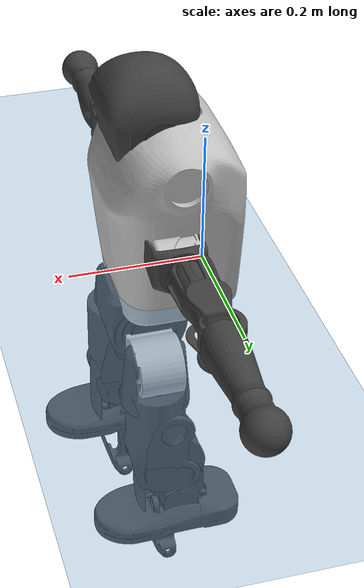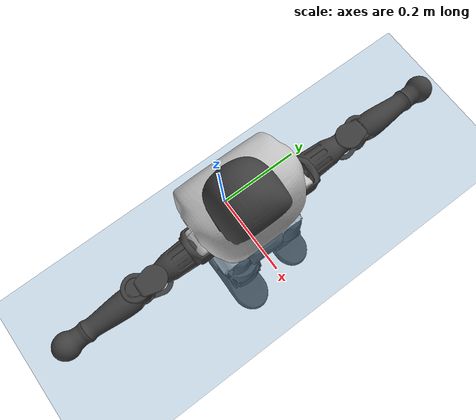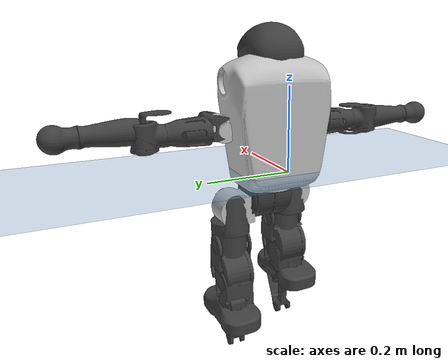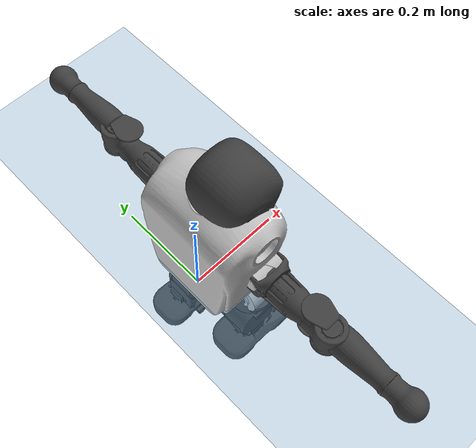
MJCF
<mujoco model="T1">
  <compiler angle="radian" assetdir="assets" balanceinertia="true" inertiafromgeom="false"/>

  <option timestep="0.005" density="1.2" viscosity="2e-05"/>

  <size nkey="1"/>

  <visual>
    <quality shadowsize="8192"/>
    <map shadowclip="0.5"/>
  </visual>

  <default>
    <default class="/">
      <joint armature="0.01" damping="0.01" frictionloss="0.1"/>
      <geom contype="0" conaffinity="0" group="1" solref="-1000 -80"/>
      <site size="0.01 0.005 0.005" group="5"/>
      <general forcelimited="true" biastype="affine" gainprm="25" biasprm="0 -25 -0.6"/>
      <default class="t1">
        <geom rgba="0.25 0.25 0.25 1"/>
        <default class="visual">
          <geom type="mesh" group="2"/>
        </default>
        <default class="collision">
          <geom group="3"/>
        </default>
        <default class="foot">
          <geom size="0.1115 0.05 0.015" type="box" condim="6" group="4" priority="1" solimp="0.015 1 0.015"/>
        </default>
        <default class="reward_collision_sphere">
          <geom group="5" rgba="1 0 0 1"/>
        </default>
      </default>
    </default>
  </default>

  <asset>
    <texture type="skybox" colorspace="auto" name="//unnamed_texture_0" builtin="gradient" rgb1="0.95 0.95 0.95" rgb2="0.95 0.95 0.95" width="100" height="600"/>
    <texture type="2d" colorspace="auto" name="texplane" builtin="checker" rgb1="0.345 0.575 0.748" rgb2="0.345 0.575 0.748" markrgb="1 1 1" width="512" height="512"/>
    <material name="MatPlane" class="/" texture="texplane" texuniform="true" texrepeat="2 2" specular="0.9"/>
    <mesh name="Trunk" class="/" file="Trunk.stl"/>
    <mesh name="H1" class="/" file="H1.stl"/>
    <mesh name="H2" class="/" file="H2.stl"/>
    <mesh name="AL1" class="/" file="AL1.stl"/>
    <mesh name="AL2" class="/" file="AL2.stl"/>
    <mesh name="AL3" class="/" file="AL3.stl"/>
    <mesh name="left_hand_link" class="/" file="left_hand_link.stl"/>
    <mesh name="AR1" class="/" file="AR1.stl"/>
    <mesh name="AR2" class="/" file="AR2.stl"/>
    <mesh name="AR3" class="/" file="AR3.stl"/>
    <mesh name="right_hand_link" class="/" file="right_hand_link.stl"/>
    <mesh name="Waist" class="/" file="Waist.stl"/>
    <mesh name="Hip_Pitch_Left" class="/" file="Hip_Pitch_Left.stl"/>
    <mesh name="Hip_Roll_Left" class="/" file="Hip_Roll_Left.stl"/>
    <mesh name="Hip_Yaw_Left" class="/" file="Hip_Yaw_Left.stl"/>
    <mesh name="Shank_Left" class="/" file="Shank_Left.stl"/>
    <mesh name="Ankle_Cross_Left" class="/" file="Ankle_Cross_Left.stl"/>
    <mesh name="left_foot_link" class="/" file="left_foot_link.stl"/>
    <mesh name="Hip_Pitch_Right" class="/" file="Hip_Pitch_Right.stl"/>
    <mesh name="Hip_Roll_Right" class="/" file="Hip_Roll_Right.stl"/>
    <mesh name="Hip_Yaw_Right" class="/" file="Hip_Yaw_Right.stl"/>
    <mesh name="Shank_Right" class="/" file="Shank_Right.stl"/>
    <mesh name="Ankle_Cross_Right" class="/" file="Ankle_Cross_Right.stl"/>
    <mesh name="right_foot_link" class="/" file="right_foot_link.stl"/>
  </asset>

  <worldbody>
    <geom name="floor" class="/" size="100 100 0.125" type="plane" group="0" material="MatPlane"/>
    <light name="toplight_shadow" class="/" pos="0 0 5" dir="0.0990148 0.0990148 -0.990148" type="directional" ambient="0.04 0.04 0.04" diffuse="0.55 0.55 0.55" specular="0.12 0.12 0.12"/>
    <light name="toplight_fill" class="/" pos="0 0 5" dir="0.0990148 0.0990148 -0.990148" type="directional" castshadow="false" ambient="0.04 0.04 0.04" diffuse="0.3 0.3 0.3" specular="0.08 0.08 0.08"/>
    <body name="trunk" childclass="t1" pos="0.00476548 0.0106791 -0.008981" quat="0.999985 -0.00344896 0.0042017 -0.0011537">
      <inertial pos="0.0665365 -0.00390902 0.0486758" quat="0.99992 -0.00580157 -0.0105791 0.00391621" mass="6.49057" diaginertia="0.217425 0.0153959 0.00130422"/>
      <joint name="//unnamed_joint_0" type="free" armature="0" damping="0" frictionloss="0"/>
      <geom name="//unnamed_geom_1" class="visual" rgba="0.76 0.76 0.76 1" mesh="Trunk"/>
      <geom name="//unnamed_geom_2" class="collision" size="0.0622364 0.0829819 0.124473" pos="0.0748694 0 0.0606598" type="box"/>
      <geom name="//unnamed_geom_3" class="reward_collision_sphere" size="0.0954292" pos="0.0748694 0 0.0505499"/>
      <geom name="//unnamed_geom_4" class="reward_collision_sphere" size="0.0124473" pos="0.0748694 0.0625714 0"/>
      <geom name="//unnamed_geom_5" class="reward_collision_sphere" size="0.0124473" pos="0.0748694 -0.0625714 0"/>
      <geom name="//unnamed_geom_6" class="reward_collision_sphere" size="0.0124473" pos="0.0748694 0.0787664 0.0909897"/>
      <geom name="//unnamed_geom_7" class="reward_collision_sphere" size="0.0124473" pos="0.0748694 -0.0787664 0.0909897"/>
      <site name="imu" pos="-0.0449127 0.0160656 -0.0148617" size="0.00829819"/>
      <camera name="track" pos="0 -1.47227 0" quat="0.707107 0.707107 0 0" mode="trackcom"/>
      <camera name="ego_camera" pos="0.152234 0 0.212309" quat="-0.5 -0.5 0.5 0.5"/>
      <body name="H1" pos="0.0668621 -0.0112582 0.131662" quat="1 -7.17158e-06 9.58763e-05 0.000142607">
        <inertial pos="0.00894358 -0.00615034 0.0199405" quat="0.768202 0.0103003 0.0658625 0.636728" mass="0.280383" diaginertia="0.000782827 4.70396e-05 5.42685e-06"/>
        <joint name="AAHead_yaw" pos="0 0 0" axis="0.0100458 0.00185211 0.999948" stiffness="0.000423671" range="-1.46486 1.76213" armature="0.0126959" damping="0.0112589" frictionloss="0.0257027"/>
        <geom name="//unnamed_geom_8" class="visual" mesh="H1"/>
        <body name="H2" pos="-0.00033123 0.000107045 0.0237134" quat="1 0.00051306 0.00039244 0.000287955">
          <inertial pos="0.007012 -0.00101327 0.0491138" quat="0.985387 0.108276 -0.083674 -0.101424" mass="0.410175" diaginertia="0.00749178 0.000442199 5.47737e-05"/>
          <joint name="Head_pitch" pos="0 0 0" axis="0.00286622 -0.999983 -0.00510727" range="-1.22743 0.34793" armature="0.0138438" damping="0" frictionloss="0.0955237"/>
          <geom name="//unnamed_geom_9" class="visual" mesh="H2"/>
          <geom name="//unnamed_geom_10" class="collision" size="0.0663855" pos="0.0124782 0 0.0556048"/>
          <geom name="//unnamed_geom_11" class="reward_collision_sphere" size="0.0746837" pos="0.0249565 0 0.0505499"/>
        </body>
      </body>
      <body name="AL1" pos="0.0734297 0.0768298 0.113247" quat="0.999999 -0.000501408 0.000883175 -0.000113556">
        <inertial pos="0.00561606 0.0317686 -0.00288142" quat="0.463157 0.502487 -0.487037 0.543863" mass="0.305698" diaginertia="0.00414747 0.000254808 8.2963e-06"/>
        <joint name="Left_Shoulder_Pitch" pos="0 0 0" axis="-0.0335341 0.999376 -0.0111356" range="-3.29694 1.11857" armature="0.00766125" damping="0.0093408" frictionloss="0.0884611"/>
        <geom name="//unnamed_geom_12" class="visual" rgba="0.76 0.76 0.76 1" mesh="AL1"/>
        <body name="AL2" pos="0.00270409 0.0346055 0.00572025" quat="1 -0.00044923 2.9781e-05 0.000635288">
          <inertial pos="0.00690047 0.0347281 -0.000250823" quat="0.485491 0.514269 -0.491978 0.507724" mass="0.0962968" diaginertia="0.00124115 7.55843e-05 6.16108e-06"/>
          <joint name="Left_Shoulder_Roll" pos="0 0 0" axis="-0.999979 -0.00182711 -0.00615148" stiffness="0.00269512" range="-1.46614 1.59421" armature="0.00810249" damping="0.00706655" frictionloss="0.0855299"/>
          <geom name="//unnamed_geom_13" class="visual" mesh="AL2"/>
          <body name="AL3" pos="-0.0100417 0.0450089 -0.00632121" quat="0.999989 -0.00362415 0.00280795 -0.000139515">
            <inertial pos="0.01242 0.0631229 -0.00156803" quat="0.707058 0.707119 -0.00652253 0.00320378" mass="0.514711" diaginertia="0.0356106 0.00314258 2.03409e-05"/>
            <joint name="Left_Elbow_Pitch" pos="0 0 0" axis="0.000107171 -1 -2.15484e-05" stiffness="0.00221326" range="-2.30455 2.24848" armature="0.0110613" damping="0" frictionloss="0.0901683"/>
            <geom name="//unnamed_geom_14" class="visual" mesh="AL3"/>
            <geom name="//unnamed_geom_15" class="collision" size="0.0248946 0.0622364" pos="0 0.0368067 0" quat="0.707105 0.707108 0 0" type="cylinder"/>
            <geom name="//unnamed_geom_16" class="reward_collision_sphere" size="0.0298735"/>
            <body name="left_hand_link" pos="0.00643415 0.109202 0.0135842" quat="0.999984 -0.00139605 0.00485624 0.00265541">
              <inertial pos="-0.00155665 0.0886955 -0.00795984" quat="0.709876 0.703552 -0.0213413 -0.0251887" mass="0.221877" diaginertia="0.0247454 0.00200088 9.24253e-06"/>
              <joint name="Left_Elbow_Yaw" pos="0 0 0" axis="-0.00400162 -0.0035483 0.999986" range="-2.41733 0.0909995" armature="0.00855357" damping="0.000881829" frictionloss="0.0772369"/>
              <geom name="//unnamed_geom_17" class="visual" mesh="left_hand_link"/>
              <geom name="//unnamed_geom_18" class="collision" size="0.0248946 0.0726091" pos="0 0.0956975 0" quat="0.707105 0.707108 0 0" type="cylinder"/>
              <geom name="//unnamed_geom_19" class="reward_collision_sphere" size="0.0414909"/>
              <geom name="//unnamed_geom_20" class="reward_collision_sphere" size="0.0290437" pos="0 0.0809748 0"/>
              <geom name="//unnamed_geom_21" class="reward_collision_sphere" size="0.0290437" pos="0 0.158269 0"/>
            </body>
          </body>
        </body>
      </body>
      <body name="AR1" pos="0.0649893 -0.0656685 0.117245" quat="1 0.000384892 -0.000194655 -5.69588e-05">
        <inertial pos="0.000736618 -0.0226518 -0.0123195" quat="0.507777 0.491628 -0.50603 0.494366" mass="0.329329" diaginertia="0.00455641 0.000349473 1.04279e-05"/>
        <joint name="Right_Shoulder_Pitch" pos="0 0 0" axis="-0.0381291 -0.998263 0.0449233" range="-1.41364 3.29853" armature="0.00656883" damping="0" frictionloss="0.0437252"/>
        <geom name="//unnamed_geom_22" class="visual" rgba="0.76 0.76 0.76 1" mesh="AR1"/>
        <body name="AR2" pos="0.000365165 -0.0279583 0.000993097" quat="0.999994 0.00116035 -0.0028685 -0.00168695">
          <inertial pos="0.0118171 -0.0263822 0.00731258" quat="0.5291 0.469146 -0.524165 0.474559" mass="0.073775" diaginertia="0.00101992 6.11699e-05 5.64736e-06"/>
          <joint name="Right_Shoulder_Roll" pos="0 0 0" axis="-0.999532 -0.0305647 0.00120211" stiffness="0.0171076" range="-1.71106 1.55316" armature="0.0127262" damping="0" frictionloss="0.087355"/>
          <geom name="//unnamed_geom_23" class="visual" mesh="AR2"/>
          <body name="AR3" pos="0.000877274 -0.0338751 -0.011425" quat="0.999988 0.00294865 0.0011778 0.00381542">
            <inertial pos="-0.0136518 -0.0626848 -0.0109648" quat="0.712875 0.701291 0.000267752 0.000703893" mass="0.641104" diaginertia="0.0494701 0.00307833 2.38998e-05"/>
            <joint name="Right_Elbow_Pitch" pos="0 0 0" axis="0.00244805 0.999995 0.0019625" stiffness="0.0290995" range="-2.23084 2.23916" armature="0.00908434" damping="0.000850996" frictionloss="0.0257783"/>
            <geom name="//unnamed_geom_24" class="visual" mesh="AR3"/>
            <geom name="//unnamed_geom_25" class="collision" size="0.0248946 0.0622364" pos="0 -0.0368067 0" quat="0.707105 0.707108 0 0" type="cylinder"/>
            <geom name="//unnamed_geom_26" class="reward_collision_sphere" size="0.0298735"/>
            <body name="right_hand_link" pos="0.00748327 -0.107095 -0.00111066" quat="1 -4.69479e-05 -0.000220065 0.000156168">
              <inertial pos="0.000751493 -0.0838371 0.00271314" quat="0.70941 0.704789 -0.00247918 -0.00204917" mass="0.176237" diaginertia="0.0207069 0.00147874 6.38141e-06"/>
              <joint name="Right_Elbow_Yaw" pos="0 0 0" axis="0.0526038 -0.0388876 0.997858" range="0.0696272 2.43907" armature="0.0108407" damping="0.00360434" frictionloss="0.0548317"/>
              <geom name="//unnamed_geom_27" class="visual" mesh="right_hand_link"/>
              <geom name="//unnamed_geom_28" class="collision" size="0.0248946 0.0726091" pos="0 -0.0956975 0" quat="0.707105 0.707108 0 0" type="cylinder"/>
              <geom name="//unnamed_geom_29" class="reward_collision_sphere" size="0.0414909"/>
              <geom name="//unnamed_geom_30" class="reward_collision_sphere" size="0.0290437" pos="0 -0.0809748 0"/>
              <geom name="//unnamed_geom_31" class="reward_collision_sphere" size="0.0290437" pos="0 -0.158269 0"/>
            </body>
          </body>
        </body>
      </body>
      <body name="Waist" pos="0.0917686 0.00540332 -0.063556" quat="0.99998 -0.00552339 -0.00294746 -0.000397856">
        <inertial pos="0.0146976 -0.00900558 0.012353" quat="0.972881 0.0166765 -0.22738 0.0390154" mass="1.756" diaginertia="0.0172119 0.00124621 0.000168464"/>
        <joint name="Waist" pos="0 0 0" axis="0.0355791 0.0122286 0.999292" range="-1.56372 1.51592" armature="0.00833567" damping="0.0116824" frictionloss="0.088966"/>
        <geom name="//unnamed_geom_32" class="visual" mesh="Waist"/>
        <body name="Hip_Pitch_Left" pos="0.00218363 0.0871984 -0.0104988" quat="0.999999 -0.000615685 0.000950229 0.000691288">
          <inertial pos="-0.0109895 -0.00463822 -0.00873141" quat="0.974509 0.21574 0.0245726 0.056431" mass="0.531269" diaginertia="0.00568561 0.000253508 3.92789e-05"/>
          <joint name="Left_Hip_Pitch" pos="0 0 0" axis="0.0107726 0.998894 0.0457725" range="-1.89932 1.61037" armature="0.00549929" damping="0" frictionloss="0.0853695"/>
          <geom name="//unnamed_geom_33" class="visual" rgba="0.76 0.76 0.76 1" mesh="Hip_Pitch_Left"/>
          <body name="Hip_Roll_Left" pos="0.00401808 0.00563243 -0.00244065" quat="1 0.000170269 0.000519666 0.000243004">
            <inertial pos="0.00254869 0.0131275 -0.022085" quat="0.707219 -0.00696879 -0.00747096 0.706921" mass="0.239252" diaginertia="0.00665515 0.000421275 1.56495e-05"/>
            <joint name="Left_Hip_Roll" pos="0 0 0" axis="-0.999602 0.0282216 0.000558986" range="-1.52914 0.0744764" armature="0.00725459" damping="0.0707138" frictionloss="0.0443314"/>
            <geom name="//unnamed_geom_34" class="visual" mesh="Hip_Roll_Left"/>
            <geom name="//unnamed_geom_35" class="reward_collision_sphere" size="0.04564"/>
            <body name="Hip_Yaw_Left" pos="-0.00111599 0.00592859 -0.0463381" quat="0.999994 -0.00173401 0.00100091 -0.00295729">
              <inertial pos="-0.0109602 -0.00334796 -0.036499" quat="0.688898 -0.047403 -0.0415004 0.722115" mass="1.20615" diaginertia="0.0855259 0.00632581 9.79394e-05"/>
              <joint name="Left_Hip_Yaw" pos="0 0 0" axis="0.00341935 0.0111193 -0.999932" stiffness="0.0554129" range="-0.741692 1.02405" armature="0.00785811" damping="0.00246146" frictionloss="0.0889774"/>
              <geom name="//unnamed_geom_36" class="visual" mesh="Hip_Yaw_Left"/>
              <geom name="//unnamed_geom_37" class="collision" size="0.0414909 0.0663855" type="cylinder"/>
              <body name="Shank_Left" pos="-0.0169855 0.00231475 -0.0607039" quat="1 7.97553e-06 -0.000122479 -0.000305951">
                <inertial pos="0.00186844 0.00178918 -0.0636752" quat="0.996876 0.0132659 -0.0552095 0.0549016" mass="0.945915" diaginertia="0.0916758 0.00843467 6.68477e-05"/>
                <joint name="Left_Knee_Pitch" pos="0 0 0" axis="-0.0140047 0.999633 0.0231938" range="-0.00353527 2.49455" armature="0.00442044" damping="0.0497803" frictionloss="0.0808393"/>
                <geom name="//unnamed_geom_38" class="visual" mesh="Shank_Left"/>
                <geom name="//unnamed_geom_39" class="collision" size="0.0414909 0.0622364" pos="0 0 -0.0606598" type="cylinder"/>
                <geom name="//unnamed_geom_40" class="reward_collision_sphere" size="0.0539382"/>
                <body name="Ankle_Cross_Left" pos="-0.00990107 0.00162302 -0.155501" quat="0.999994 0.0028255 -0.00130939 0.00118655">
                  <inertial pos="0.00922473 -0.00158293 -0.0108391" quat="0.444028 0.549734 0.553849 0.440321" mass="0.0420485" diaginertia="9.71291e-05 5.61643e-06 3.58096e-07"/>
                  <joint name="Left_Ankle_Pitch" pos="0 0 0" axis="0.000183056 1 0.000446653" stiffness="0.0489889" range="-0.895592 0.335263" armature="0.00254842" damping="0" frictionloss="0.0852318"/>
                  <geom name="//unnamed_geom_41" class="visual" mesh="Ankle_Cross_Left"/>
                  <body name="left_foot_link" pos="0.00379044 0.00838323 -0.0144789" quat="0.999976 -0.00224887 0.00461747 0.0047065">
                    <inertial pos="0.00897275 0.00660286 -0.00366128" quat="-0.0372294 0.624736 0.0436116 0.778728" mass="0.332092" diaginertia="0.00737208 0.000491743 5.78701e-05"/>
                    <joint name="Left_Ankle_Roll" pos="0 0 0" axis="-0.997709 -0.0191675 -0.0648783" range="-0.517738 0.283186" armature="0.00906899" damping="0.0523489" frictionloss="0.0934889"/>
                    <geom name="//unnamed_geom_42" class="visual" mesh="left_foot_link"/>
                    <geom name="left_foot" class="foot" size="0.0702614 0.0581245 0.0122825" pos="0.0124782 0 -0.00758248"/>
                    <geom name="//unnamed_geom_44" class="reward_collision_sphere" size="0.0431506" pos="0.0124782 0 -0.00758248"/>
                    <geom name="//unnamed_geom_45" class="reward_collision_sphere" size="0.0248946" pos="0.118543 -0.0169311 -0.00758248"/>
                    <geom name="//unnamed_geom_46" class="reward_collision_sphere" size="0.0248946" pos="-0.0873476 -0.0169311 -0.00758248"/>
                    <site name="left_foot" class="foot" pos="0.0124782 0 -0.00758248" size="0.00829819"/>
                  </body>
                </body>
              </body>
            </body>
          </body>
        </body>
        <body name="Hip_Pitch_Right" pos="0.00217761 -0.0709594 0.0132453" quat="1 -0.000137321 0.000150044 3.96721e-05">
          <inertial pos="0.0130772 0.0166349 -0.00508481" quat="0.976383 -0.215948 0.00648689 0.000827921" mass="0.579592" diaginertia="0.00480884 0.000284653 4.17045e-05"/>
          <joint name="Right_Hip_Pitch" pos="0 0 0" axis="-0.00714944 -0.999894 0.0127184" stiffness="0.020944" range="-1.51645 1.95676" armature="0.0101424" damping="0.0653609" frictionloss="0.0626918"/>
          <geom name="//unnamed_geom_47" class="visual" rgba="0.76 0.76 0.76 1" mesh="Hip_Pitch_Right"/>
          <body name="Hip_Roll_Right" pos="0.00772841 0.00280463 0.00305141" quat="0.999993 0.000815294 -0.00163078 0.00312418">
            <inertial pos="0.00990729 -0.0043019 -0.0355828" quat="0.701395 -0.0471613 -0.038379 0.710174" mass="0.20899" diaginertia="0.00451481 0.000346822 1.70536e-05"/>
            <joint name="Right_Hip_Roll" pos="0 0 0" axis="-0.999887 -0.0118503 -0.00921997" stiffness="0.00425274" range="-0.172236 1.57223" armature="0.00846154" damping="0" frictionloss="0.0484186"/>
            <geom name="//unnamed_geom_48" class="visual" mesh="Hip_Roll_Right"/>
            <geom name="//unnamed_geom_49" class="reward_collision_sphere" size="0.04564"/>
            <body name="Hip_Yaw_Right" pos="0.012941 0.00495962 -0.0372575" quat="1 -6.40955e-05 -0.000117647 -0.000474105">
              <inertial pos="-0.00772319 0.00275218 -0.0525046" quat="0.716715 -0.0273704 -0.0335183 0.696022" mass="1.23578" diaginertia="0.0655633 0.00569562 7.14924e-05"/>
              <joint name="Right_Hip_Yaw" pos="0 0 0" axis="-0.00116989 0.00168693 -0.999998" stiffness="0.0119036" range="-1.03967 0.954651" armature="0.0078119" damping="0" frictionloss="0.0999943"/>
              <geom name="//unnamed_geom_50" class="visual" mesh="Hip_Yaw_Right"/>
              <geom name="//unnamed_geom_51" class="collision" size="0.0414909 0.0663855" type="cylinder"/>
              <body name="Shank_Right" pos="-0.00693524 0.00440802 -0.059211" quat="0.999998 0.00149555 0.000107649 -0.00153125">
                <inertial pos="-0.00634298 0.0101249 -0.0639857" quat="0.997429 -0.00985889 -0.0669864 -0.023489" mass="0.877523" diaginertia="0.111259 0.00751092 7.32895e-05"/>
                <joint name="Right_Knee_Pitch" pos="0 0 0" axis="0.00450199 -0.99999 0.000320259" range="-2.10918 0.013365" armature="0.00955604" damping="0" frictionloss="0.0872804"/>
                <geom name="//unnamed_geom_52" class="visual" mesh="Shank_Right"/>
                <geom name="//unnamed_geom_53" class="collision" size="0.0414909 0.0622364" pos="0 0 -0.0606598" type="cylinder"/>
                <geom name="//unnamed_geom_54" class="reward_collision_sphere" size="0.0539382"/>
                <body name="Ankle_Cross_Right" pos="0.00281444 -0.00238707 -0.136855" quat="1 0.000527636 -8.3216e-05 -0.000335381">
                  <inertial pos="-0.00706863 -0.00628662 -0.00462709" quat="0.44335 0.551328 0.550885 0.442723" mass="0.0459881" diaginertia="7.59004e-05 6.13904e-06 3.23958e-07"/>
                  <joint name="Right_Ankle_Pitch" pos="0 0 0" axis="0.0490133 -0.998455 0.0261829" stiffness="0.0479144" range="-0.50022 1.05304" armature="0.00804168" damping="0" frictionloss="0.0889166"/>
                  <geom name="//unnamed_geom_55" class="visual" mesh="Ankle_Cross_Right"/>
                  <body name="right_foot_link" pos="-0.00293539 -0.0104659 -0.0126264" quat="1 0.000468815 0.000295096 0.000225966">
                    <inertial pos="-0.000263568 -0.0105021 0.00872893" quat="-0.00734344 0.638252 -0.0467846 0.76837" mass="0.491785" diaginertia="0.00951659 0.000616264 9.82251e-05"/>
                    <joint name="Right_Ankle_Roll" pos="0 0 0" axis="-0.999762 -0.0186522 0.0113547" range="-0.24284 0.197439" armature="0.0138765" damping="0.0724367" frictionloss="0.0472581"/>
                    <geom name="//unnamed_geom_56" class="visual" mesh="right_foot_link"/>
                    <geom name="right_foot" class="foot" size="0.0710467 0.0573029 0.00749634" pos="0.0124782 0 -0.00758248"/>
                    <geom name="//unnamed_geom_58" class="reward_collision_sphere" size="0.0331928"/>
                    <geom name="//unnamed_geom_59" class="reward_collision_sphere" size="0.0248946" pos="0.0124782 0 -0.00758248"/>
                    <geom name="//unnamed_geom_60" class="reward_collision_sphere" size="0.0248946" pos="0.118543 0.0169311 -0.00758248"/>
                    <geom name="//unnamed_geom_61" class="reward_collision_sphere" size="0.0248946" pos="-0.0873476 0.0169311 -0.00758248"/>
                    <site name="right_foot" class="foot" pos="0.0124782 0 -0.00758248" size="0.00829819"/>
                  </body>
                </body>
              </body>
            </body>
          </body>
        </body>
      </body>
    </body>
  </worldbody>

  <contact>
    <pair class="/" geom1="floor" geom2="left_foot" name="//unnamed_contact_0"/>
    <pair class="/" geom1="floor" geom2="right_foot" name="//unnamed_contact_1"/>
  </contact>

  <actuator>
    <general name="AAHead_yaw" class="/" joint="AAHead_yaw" forcerange="-5.50901 5.50901" gainprm="23.6974" biasprm="0 -23.6974 -0.416308"/>
    <general name="Head_pitch" class="/" joint="Head_pitch" forcerange="-6.02766 6.02766" gainprm="23.6974" biasprm="0 -23.6974 -0.416308"/>
    <general name="Left_Shoulder_Pitch" class="/" joint="Left_Shoulder_Pitch" forcerange="-22.6291 22.6291" gainprm="23.6974" biasprm="0 -23.6974 -0.416308"/>
    <general name="Left_Shoulder_Roll" class="/" joint="Left_Shoulder_Roll" forcerange="-21.1034 21.1034" gainprm="23.6974" biasprm="0 -23.6974 -0.416308"/>
    <general name="Left_Elbow_Pitch" class="/" joint="Left_Elbow_Pitch" forcerange="-10.454 10.454" gainprm="23.6974" biasprm="0 -23.6974 -0.416308"/>
    <general name="Left_Elbow_Yaw" class="/" joint="Left_Elbow_Yaw" forcerange="-14.3096 14.3096" gainprm="23.6974" biasprm="0 -23.6974 -0.416308"/>
    <general name="Right_Shoulder_Pitch" class="/" joint="Right_Shoulder_Pitch" forcerange="-16.1025 16.1025" gainprm="23.6974" biasprm="0 -23.6974 -0.416308"/>
    <general name="Right_Shoulder_Roll" class="/" joint="Right_Shoulder_Roll" forcerange="-10.1099 10.1099" gainprm="23.6974" biasprm="0 -23.6974 -0.416308"/>
    <general name="Right_Elbow_Pitch" class="/" joint="Right_Elbow_Pitch" forcerange="-13.9799 13.9799" gainprm="23.6974" biasprm="0 -23.6974 -0.416308"/>
    <general name="Right_Elbow_Yaw" class="/" joint="Right_Elbow_Yaw" forcerange="-16.4945 16.4945" gainprm="23.6974" biasprm="0 -23.6974 -0.416308"/>
    <general name="Waist" class="/" joint="Waist" forcerange="-34.3456 34.3456" gainprm="23.6974" biasprm="0 -23.6974 -0.416308"/>
    <general name="Left_Hip_Pitch" class="/" joint="Left_Hip_Pitch" forcerange="-36.4472 36.4472" gainprm="23.6974" biasprm="0 -23.6974 -0.416308"/>
    <general name="Left_Hip_Roll" class="/" joint="Left_Hip_Roll" forcerange="-20.6208 20.6208" gainprm="23.6974" biasprm="0 -23.6974 -0.416308"/>
    <general name="Left_Hip_Yaw" class="/" joint="Left_Hip_Yaw" forcerange="-31.3939 31.3939" gainprm="23.6974" biasprm="0 -23.6974 -0.416308"/>
    <general name="Left_Knee_Pitch" class="/" joint="Left_Knee_Pitch" forcerange="-46.7436 46.7436" gainprm="23.6974" biasprm="0 -23.6974 -0.416308"/>
    <general name="Left_Ankle_Pitch" class="/" joint="Left_Ankle_Pitch" forcerange="-16.3127 16.3127" gainprm="23.6974" biasprm="0 -23.6974 -0.416308"/>
    <general name="Left_Ankle_Roll" class="/" joint="Left_Ankle_Roll" forcerange="-10.6239 10.6239" gainprm="23.6974" biasprm="0 -23.6974 -0.416308"/>
    <general name="Right_Hip_Pitch" class="/" joint="Right_Hip_Pitch" forcerange="-21.7235 21.7235" gainprm="23.6974" biasprm="0 -23.6974 -0.416308"/>
    <general name="Right_Hip_Roll" class="/" joint="Right_Hip_Roll" forcerange="-12.4451 12.4451" gainprm="23.6974" biasprm="0 -23.6974 -0.416308"/>
    <general name="Right_Hip_Yaw" class="/" joint="Right_Hip_Yaw" forcerange="-23.6136 23.6136" gainprm="23.6974" biasprm="0 -23.6974 -0.416308"/>
    <general name="Right_Knee_Pitch" class="/" joint="Right_Knee_Pitch" forcerange="-37.7217 37.7217" gainprm="23.6974" biasprm="0 -23.6974 -0.416308"/>
    <general name="Right_Ankle_Pitch" class="/" joint="Right_Ankle_Pitch" forcerange="-24.735 24.735" gainprm="23.6974" biasprm="0 -23.6974 -0.416308"/>
    <general name="Right_Ankle_Roll" class="/" joint="Right_Ankle_Roll" forcerange="-7.88478 7.88478" gainprm="23.6974" biasprm="0 -23.6974 -0.416308"/>
  </actuator>

  <sensor>
    <gyro site="imu" name="imu_angular_velocity"/>
    <velocimeter site="imu" name="imu_linear_velocity"/>
    <framelinvel objtype="site" objname="left_foot" name="left_foot_global_linear_velocity"/>
    <framelinvel objtype="site" objname="right_foot" name="right_foot_global_linear_velocity"/>
  </sensor>

  <keyframe>
    <key name="home" qpos="0 0 0.6385 1 0 0 0 0 0 0 1.4 0 -0.4 0 -1.4 0 0.4 0 -0.4 0 0 0.8 -0.4 0 0.4 0 0 -0.8 0.4 0"/>
  </keyframe>
</mujoco>
